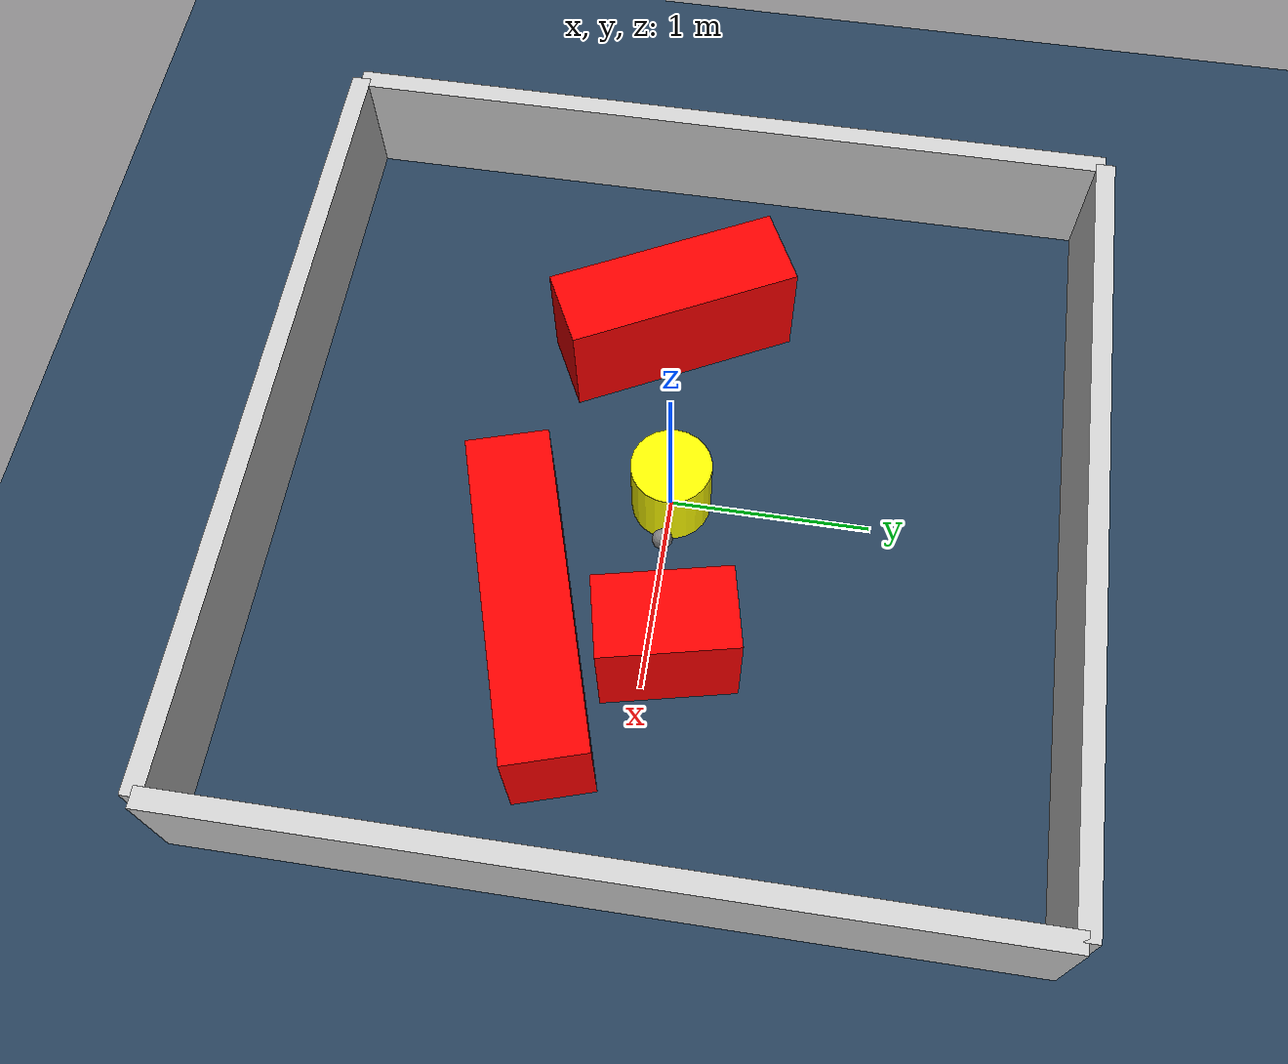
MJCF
<?xml version="1.0" ?>
<mujoco model="generated_environment">
  <option timestep="0.01" integrator="RK4" cone="elliptic"/>
  <default>
    <geom density="1"/>
  </default>
  <asset>
    <texture builtin="gradient" height="3072" rgb1="0.3 0.5 0.7" rgb2="0 0 0" type="skybox" width="512"/>
    <texture builtin="checker" height="300" mark="edge" markrgb="0.8 0.8 0.8" name="groundplane" rgb1="0.2 0.3 0.4" rgb2="0.1 0.2 0.3" type="2d" width="300"/>
    <material name="groundplane" reflectance="0.2" texrepeat="5 5" texture="groundplane" texuniform="true"/>
    <material name="robot" rgba="0.0 1.0 0.0 1"/>
  </asset>
  <worldbody>
    <light dir="0 0 -1" directional="true" pos="0 0 1.5"/>
    <geom condim="4" friction="1.0 0.005 0.001" material="groundplane" name="floor" size="0 0 0.05" type="plane"/>
    <body name="walls">
      <geom name="wall_1" condim="4" pos="-2.0 0.0 0.3" rgba="0.800000011920929 0.800000011920929 0.800000011920929 1.0" size="0.05 2.0 0.3" type="box"/>
      <geom name="wall_2" condim="4" pos="2.0 0.0 0.3" rgba="0.800000011920929 0.800000011920929 0.800000011920929 1.0" size="0.05 2.0 0.3" type="box"/>
      <geom name="wall_3" condim="4" pos="0.0 -2.0 0.3" rgba="0.800000011920929 0.800000011920929 0.800000011920929 1.0" size="2.0 0.05 0.3" type="box"/>
      <geom name="wall_4" condim="4" pos="0.0 2.0 0.3" rgba="0.800000011920929 0.800000011920929 0.800000011920929 1.0" size="2.0 0.05 0.3" type="box"/>
    </body>
    <body name="robot">
      <joint name="joint_x" type="slide" pos="0 0 0" axis="1 0 0"/>
      <joint name="joint_y" type="slide" pos="0 0 0" axis="0 1 0"/>
      <geom name="robot" type="sphere" pos="0.3 0.0 0.2" size="0.05" mass="5." friction="1.0 0.005 0.0001" condim="4" rgba="0.5 0.5 0.5 1.0"/>
      <site name="sensor_ball"/>
    </body>
    <body name="obstacle_movable_1">
      <geom name="obstacle_movable_1" condim="4" pos="0.0 0.0 0.2" euler="0 0 0.0" friction="1.0 0.005 0.001" rgba="1.0 1.0 0.0 1.0" size="0.2 0.2 0.0" type="cylinder" mass="0.1"/>
      <joint type="free"/>
    </body>
    <body name="obstacle_2_static">
      <geom name="obstacle_2_static" condim="4" pos="-0.958890375683638 -0.13395597523372293 0.3" euler="0 0 297.3798660754155" friction="1.0 0.005 0.001" rgba="1 0 0 1" size="0.5900566004325649 0.2 0.3" type="box"/>
    </body>
    <body name="obstacle_3_static">
      <geom name="obstacle_3_static" condim="4" pos="0.833376797100152 0.09955329413654312 0.3" euler="0 0 282.8046195154123" friction="1.0 0.005 0.001" rgba="1 0 0 1" size="0.3296205872003587 0.2 0.3" type="box"/>
    </body>
    <body name="obstacle_4_static">
      <geom name="obstacle_4_static" condim="4" pos="0.8210320850436281 -0.5431701145809327 0.3" euler="0 0 17.232072023264774" friction="1.0 0.005 0.001" rgba="1 0 0 1" size="0.7983216430857503 0.2 0.3" type="box"/>
    </body>
  </worldbody>
  <actuator>
    <motor name="actuator_x" joint="joint_x" gear="1" ctrlrange="-1 1"/>
    <motor name="actuator_y" joint="joint_y" gear="1" ctrlrange="-1 1"/>
  </actuator>
</mujoco>
